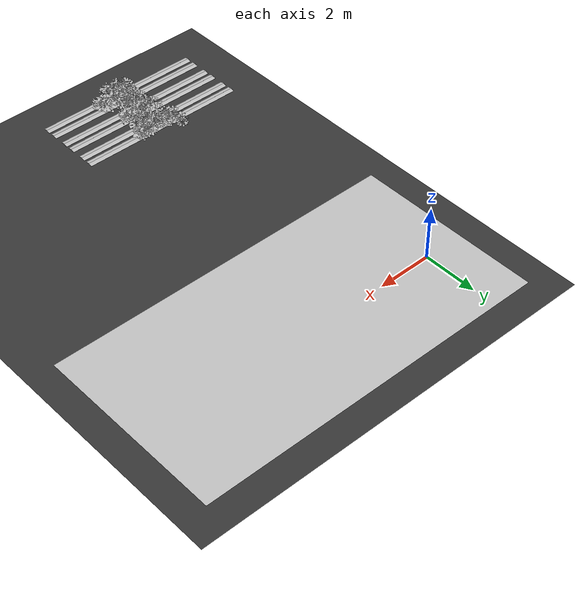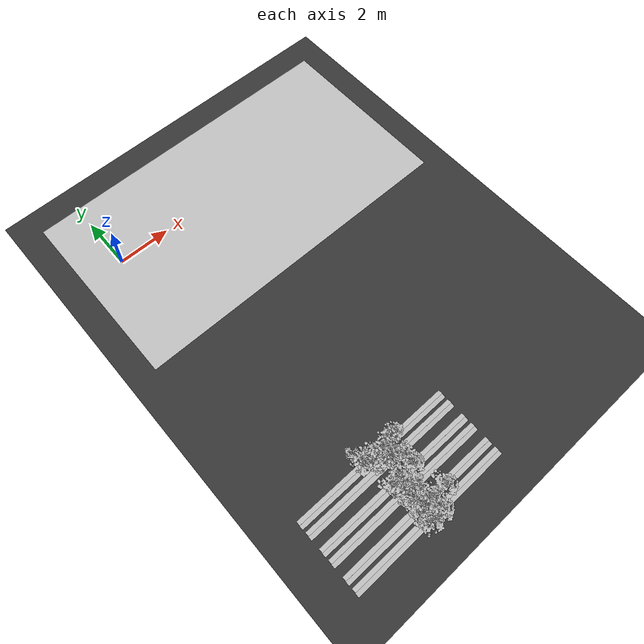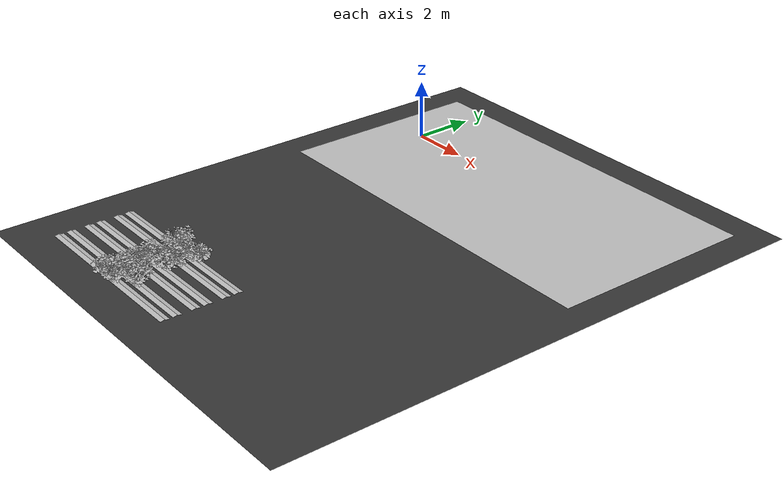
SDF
<sdf version="1.7">
 <world name="default">
  <model name="ground_plane">
   <static>1</static>
   <link name="link">
    <collision name="collision">
     <geometry><plane><normal>0 0 1</normal><size>100 100</size></plane></geometry>
     <surface>
      <contact><collide_bitmask>65535</collide_bitmask></contact>
      <friction><ode><mu>100</mu><mu2>50</mu2></ode></friction>
     </surface>
    </collision>
    <visual name="visual">
     <cast_shadows>0</cast_shadows>
     <geometry><plane><normal>0 0 1</normal><size>100 100</size></plane></geometry>
     <material>
      <ambient>0.2 0.2 0.2 1.0</ambient>
      <diffuse>0.2 0.2 0.2 1.0</diffuse>
      <specular>0.2 0.2 0.2 1.0</specular>
      <emissive>0.2 0.2 0.2 1.0</emissive>
     </material>
    </visual>
   </link>
  </model>
  <model name="ground">
   <pose>5 -0.5 0.01  3.141592654 0 0</pose>
   <static>true</static>
   <link name="body">
    <visual name="visual">
     <cast_shadows>0</cast_shadows>
     <geometry>
      <mesh><uri>file:///home/ifcosta/catkin_ws/src/cnn_line/worlds/models/ground.obj</uri></mesh>
     </geometry>
    </visual>
   </link>
  </model>
  <model name="plt_30005">
   <pose>1.5 -10.3 0.0163 0.0 0.0 1.4374</pose>
   <static>true</static>
   <link name="body">
    <visual name="visual">
     <geometry>
      <mesh><uri>file:///home/ifcosta/catkin_ws/src/cnn_line/worlds/models/plant31.obj</uri></mesh>
     </geometry>
    </visual>
   </link>
  </model>
  <model name="plt_40006">
   <pose>1.82 -13.3 0.0144 0.0 0.0 -0.086727</pose>
   <static>true</static>
   <link name="body">
    <visual name="visual">
     <geometry>
      <mesh><uri>file:///home/ifcosta/catkin_ws/src/cnn_line/worlds/models/plant37.obj</uri></mesh>
     </geometry>
    </visual>
   </link>
  </model>
  <model name="plt_40007">
   <pose>2.12 -13.2 0.0155 0.0 0.0 3.1503</pose>
   <static>true</static>
   <link name="body">
    <visual name="visual">
     <geometry>
      <mesh><uri>file:///home/ifcosta/catkin_ws/src/cnn_line/worlds/models/plant37.obj</uri></mesh>
     </geometry>
    </visual>
   </link>
  </model>
  <model name="plt_40008">
   <pose>2.41 -13.2 0.0153 0.0 0.0 -0.53902</pose>
   <static>true</static>
   <link name="body">
    <visual name="visual">
     <geometry>
      <mesh><uri>file:///home/ifcosta/catkin_ws/src/cnn_line/worlds/models/plant37.obj</uri></mesh>
     </geometry>
    </visual>
   </link>
  </model>
  <model name="slope_1834">
   <pose>2.0 -13.2 -0.005 0.0 0.0 0.0</pose>
   <static>true</static>
   <link name="body">
    <visual name="visual">
     <geometry>
      <mesh><uri>file:///home/ifcosta/catkin_ws/src/cnn_line/worlds/models/slope.obj</uri></mesh>
     </geometry>
    </visual>
   </link>
  </model>
  <model name="slope_1934">
   <pose>2.0 -13.2 -0.005 0.0 0.0 3.1416</pose>
   <static>true</static>
   <link name="body">
    <visual name="visual">
     <geometry>
      <mesh><uri>file:///home/ifcosta/catkin_ws/src/cnn_line/worlds/models/slope.obj</uri></mesh>
     </geometry>
    </visual>
   </link>
  </model>
  <model name="plt_40040">
   <pose>1.84 -12.8 0.0124 0.0 0.0 1.8203</pose>
   <static>true</static>
   <link name="body">
    <visual name="visual">
     <geometry>
      <mesh><uri>file:///home/ifcosta/catkin_ws/src/cnn_line/worlds/models/plant37.obj</uri></mesh>
     </geometry>
    </visual>
   </link>
  </model>
  <model name="plt_40041">
   <pose>2.08 -12.8 0.0134 0.0 0.0 -0.34</pose>
   <static>true</static>
   <link name="body">
    <visual name="visual">
     <geometry>
      <mesh><uri>file:///home/ifcosta/catkin_ws/src/cnn_line/worlds/models/plant37.obj</uri></mesh>
     </geometry>
    </visual>
   </link>
  </model>
  <model name="plt_40042">
   <pose>2.44 -12.8 0.0154 0.0 0.0 -0.41774</pose>
   <static>true</static>
   <link name="body">
    <visual name="visual">
     <geometry>
      <mesh><uri>file:///home/ifcosta/catkin_ws/src/cnn_line/worlds/models/plant37.obj</uri></mesh>
     </geometry>
    </visual>
   </link>
  </model>
  <model name="plt_40044">
   <pose>3.02 -12.8 0.0167 0.0 0.0 -0.66769</pose>
   <static>true</static>
   <link name="body">
    <visual name="visual">
     <geometry>
      <mesh><uri>file:///home/ifcosta/catkin_ws/src/cnn_line/worlds/models/plant37.obj</uri></mesh>
     </geometry>
    </visual>
   </link>
  </model>
  <model name="slope_1868">
   <pose>2.0 -12.8 -0.005 0.0 0.0 0.0</pose>
   <static>true</static>
   <link name="body">
    <visual name="visual">
     <geometry>
      <mesh><uri>file:///home/ifcosta/catkin_ws/src/cnn_line/worlds/models/slope.obj</uri></mesh>
     </geometry>
    </visual>
   </link>
  </model>
  <model name="slope_1968">
   <pose>2.0 -12.8 -0.005 0.0 0.0 3.1416</pose>
   <static>true</static>
   <link name="body">
    <visual name="visual">
     <geometry>
      <mesh><uri>file:///home/ifcosta/catkin_ws/src/cnn_line/worlds/models/slope.obj</uri></mesh>
     </geometry>
    </visual>
   </link>
  </model>
  <model name="plt_40074">
   <pose>1.83 -12.2 0.0153 0.0 0.0 -1.3053</pose>
   <static>true</static>
   <link name="body">
    <visual name="visual">
     <geometry>
      <mesh><uri>file:///home/ifcosta/catkin_ws/src/cnn_line/worlds/models/plant37.obj</uri></mesh>
     </geometry>
    </visual>
   </link>
  </model>
  <model name="plt_40075">
   <pose>2.05 -12.3 0.0147 0.0 0.0 0.84289</pose>
   <static>true</static>
   <link name="body">
    <visual name="visual">
     <geometry>
      <mesh><uri>file:///home/ifcosta/catkin_ws/src/cnn_line/worlds/models/plant37.obj</uri></mesh>
     </geometry>
    </visual>
   </link>
  </model>
  <model name="plt_40076">
   <pose>2.4 -12.3 0.012 0.0 0.0 1.9294</pose>
   <static>true</static>
   <link name="body">
    <visual name="visual">
     <geometry>
      <mesh><uri>file:///home/ifcosta/catkin_ws/src/cnn_line/worlds/models/plant37.obj</uri></mesh>
     </geometry>
    </visual>
   </link>
  </model>
  <model name="slope_1902">
   <pose>2.0 -12.2 -0.005 0.0 0.0 0.0</pose>
   <static>true</static>
   <link name="body">
    <visual name="visual">
     <geometry>
      <mesh><uri>file:///home/ifcosta/catkin_ws/src/cnn_line/worlds/models/slope.obj</uri></mesh>
     </geometry>
    </visual>
   </link>
  </model>
  <model name="slope_2002">
   <pose>2.0 -12.2 -0.005 0.0 0.0 3.1416</pose>
   <static>true</static>
   <link name="body">
    <visual name="visual">
     <geometry>
      <mesh><uri>file:///home/ifcosta/catkin_ws/src/cnn_line/worlds/models/slope.obj</uri></mesh>
     </geometry>
    </visual>
   </link>
  </model>
  <model name="plt_40108">
   <pose>1.8 -11.8 0.0135 0.0 0.0 0.065033</pose>
   <static>true</static>
   <link name="body">
    <visual name="visual">
     <geometry>
      <mesh><uri>file:///home/ifcosta/catkin_ws/src/cnn_line/worlds/models/plant37.obj</uri></mesh>
     </geometry>
    </visual>
   </link>
  </model>
  <model name="plt_40109">
   <pose>2.14 -11.7 0.0145 0.0 0.0 -0.90714</pose>
   <static>true</static>
   <link name="body">
    <visual name="visual">
     <geometry>
      <mesh><uri>file:///home/ifcosta/catkin_ws/src/cnn_line/worlds/models/plant37.obj</uri></mesh>
     </geometry>
    </visual>
   </link>
  </model>
  <model name="plt_40111">
   <pose>2.71 -11.7 0.0155 0.0 0.0 -0.37536</pose>
   <static>true</static>
   <link name="body">
    <visual name="visual">
     <geometry>
      <mesh><uri>file:///home/ifcosta/catkin_ws/src/cnn_line/worlds/models/plant37.obj</uri></mesh>
     </geometry>
    </visual>
   </link>
  </model>
  <model name="slope_1936">
   <pose>2.0 -11.8 -0.005 0.0 0.0 0.0</pose>
   <static>true</static>
   <link name="body">
    <visual name="visual">
     <geometry>
      <mesh><uri>file:///home/ifcosta/catkin_ws/src/cnn_line/worlds/models/slope.obj</uri></mesh>
     </geometry>
    </visual>
   </link>
  </model>
  <model name="slope_2036">
   <pose>2.0 -11.8 -0.005 0.0 0.0 3.1416</pose>
   <static>true</static>
   <link name="body">
    <visual name="visual">
     <geometry>
      <mesh><uri>file:///home/ifcosta/catkin_ws/src/cnn_line/worlds/models/slope.obj</uri></mesh>
     </geometry>
    </visual>
   </link>
  </model>
  <model name="plt_40143">
   <pose>2.12 -11.2 0.0142 0.0 0.0 -0.44976</pose>
   <static>true</static>
   <link name="body">
    <visual name="visual">
     <geometry>
      <mesh><uri>file:///home/ifcosta/catkin_ws/src/cnn_line/worlds/models/plant37.obj</uri></mesh>
     </geometry>
    </visual>
   </link>
  </model>
  <model name="plt_40144">
   <pose>2.4 -11.2 0.0167 0.0 0.0 0.12339</pose>
   <static>true</static>
   <link name="body">
    <visual name="visual">
     <geometry>
      <mesh><uri>file:///home/ifcosta/catkin_ws/src/cnn_line/worlds/models/plant37.obj</uri></mesh>
     </geometry>
    </visual>
   </link>
  </model>
  <model name="plt_40145">
   <pose>2.73 -11.3 0.013 0.0 0.0 2.9975</pose>
   <static>true</static>
   <link name="body">
    <visual name="visual">
     <geometry>
      <mesh><uri>file:///home/ifcosta/catkin_ws/src/cnn_line/worlds/models/plant37.obj</uri></mesh>
     </geometry>
    </visual>
   </link>
  </model>
  <model name="slope_1970">
   <pose>2.0 -11.2 -0.005 0.0 0.0 0.0</pose>
   <static>true</static>
   <link name="body">
    <visual name="visual">
     <geometry>
      <mesh><uri>file:///home/ifcosta/catkin_ws/src/cnn_line/worlds/models/slope.obj</uri></mesh>
     </geometry>
    </visual>
   </link>
  </model>
  <model name="slope_2070">
   <pose>2.0 -11.2 -0.005 0.0 0.0 3.1416</pose>
   <static>true</static>
   <link name="body">
    <visual name="visual">
     <geometry>
      <mesh><uri>file:///home/ifcosta/catkin_ws/src/cnn_line/worlds/models/slope.obj</uri></mesh>
     </geometry>
    </visual>
   </link>
  </model>
  <model name="plt_40175">
   <pose>1.51 -10.7 0.0125 0.0 0.0 -1.2754</pose>
   <static>true</static>
   <link name="body">
    <visual name="visual">
     <geometry>
      <mesh><uri>file:///home/ifcosta/catkin_ws/src/cnn_line/worlds/models/plant37.obj</uri></mesh>
     </geometry>
    </visual>
   </link>
  </model>
  <model name="plt_40176">
   <pose>1.8 -10.8 0.0132 0.0 0.0 2.2003</pose>
   <static>true</static>
   <link name="body">
    <visual name="visual">
     <geometry>
      <mesh><uri>file:///home/ifcosta/catkin_ws/src/cnn_line/worlds/models/plant37.obj</uri></mesh>
     </geometry>
    </visual>
   </link>
  </model>
  <model name="plt_40177">
   <pose>2.15 -10.8 0.0153 0.0 0.0 -0.32133</pose>
   <static>true</static>
   <link name="body">
    <visual name="visual">
     <geometry>
      <mesh><uri>file:///home/ifcosta/catkin_ws/src/cnn_line/worlds/models/plant37.obj</uri></mesh>
     </geometry>
    </visual>
   </link>
  </model>
  <model name="plt_40178">
   <pose>2.4 -10.8 0.0163 0.0 0.0 0.25551</pose>
   <static>true</static>
   <link name="body">
    <visual name="visual">
     <geometry>
      <mesh><uri>file:///home/ifcosta/catkin_ws/src/cnn_line/worlds/models/plant37.obj</uri></mesh>
     </geometry>
    </visual>
   </link>
  </model>
  <model name="plt_40179">
   <pose>2.67 -10.7 0.0138 0.0 0.0 -1.9333</pose>
   <static>true</static>
   <link name="body">
    <visual name="visual">
     <geometry>
      <mesh><uri>file:///home/ifcosta/catkin_ws/src/cnn_line/worlds/models/plant37.obj</uri></mesh>
     </geometry>
    </visual>
   </link>
  </model>
  <model name="plt_40180">
   <pose>2.92 -10.7 0.0149 0.0 0.0 0.9473</pose>
   <static>true</static>
   <link name="body">
    <visual name="visual">
     <geometry>
      <mesh><uri>file:///home/ifcosta/catkin_ws/src/cnn_line/worlds/models/plant37.obj</uri></mesh>
     </geometry>
    </visual>
   </link>
  </model>
  <model name="slope_2004">
   <pose>2.0 -10.8 -0.005 0.0 0.0 0.0</pose>
   <static>true</static>
   <link name="body">
    <visual name="visual">
     <geometry>
      <mesh><uri>file:///home/ifcosta/catkin_ws/src/cnn_line/worlds/models/slope.obj</uri></mesh>
     </geometry>
    </visual>
   </link>
  </model>
  <model name="slope_2104">
   <pose>2.0 -10.8 -0.005 0.0 0.0 3.1416</pose>
   <static>true</static>
   <link name="body">
    <visual name="visual">
     <geometry>
      <mesh><uri>file:///home/ifcosta/catkin_ws/src/cnn_line/worlds/models/slope.obj</uri></mesh>
     </geometry>
    </visual>
   </link>
  </model>
 </world>
</sdf>
